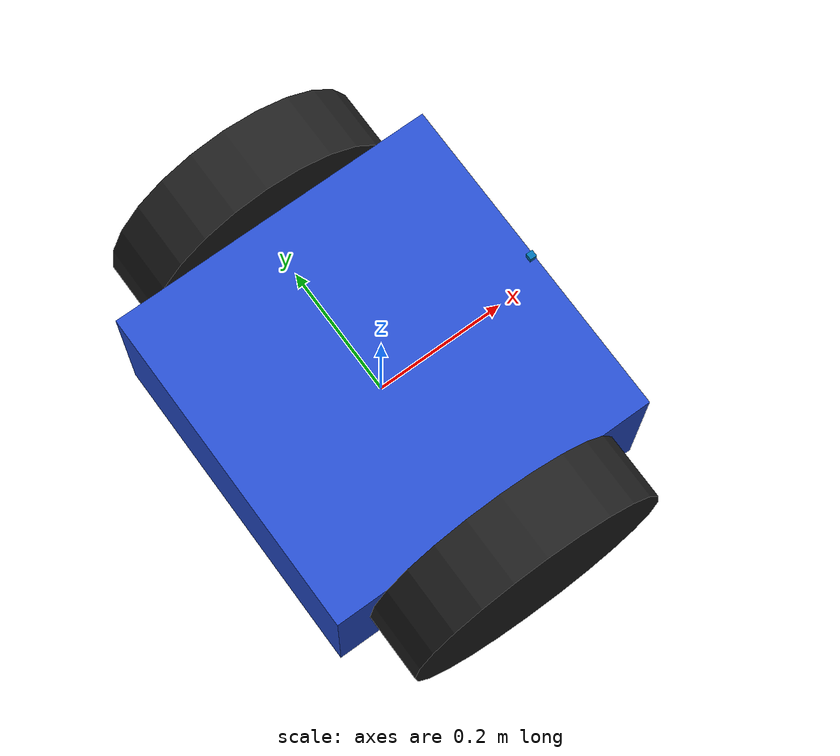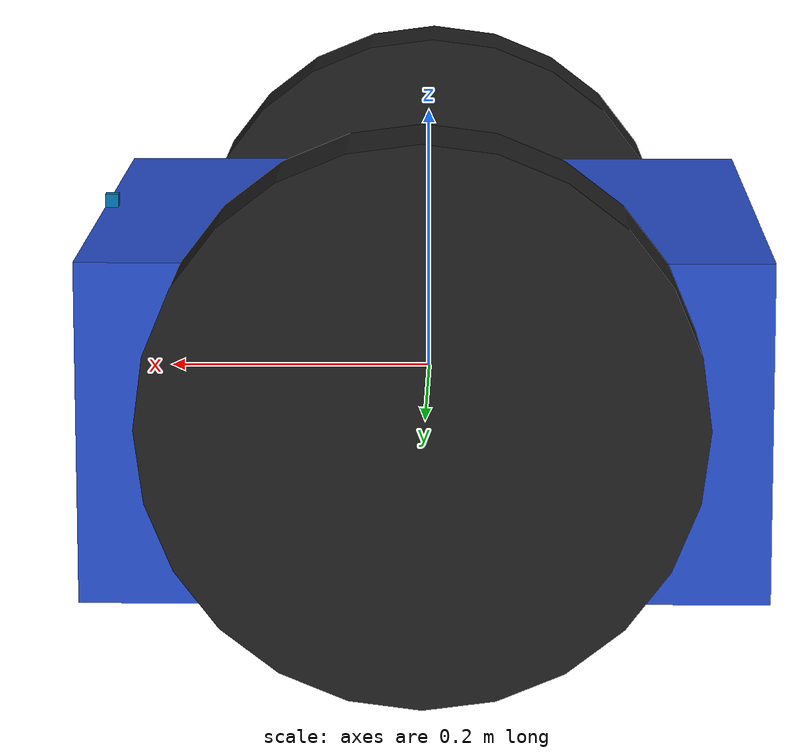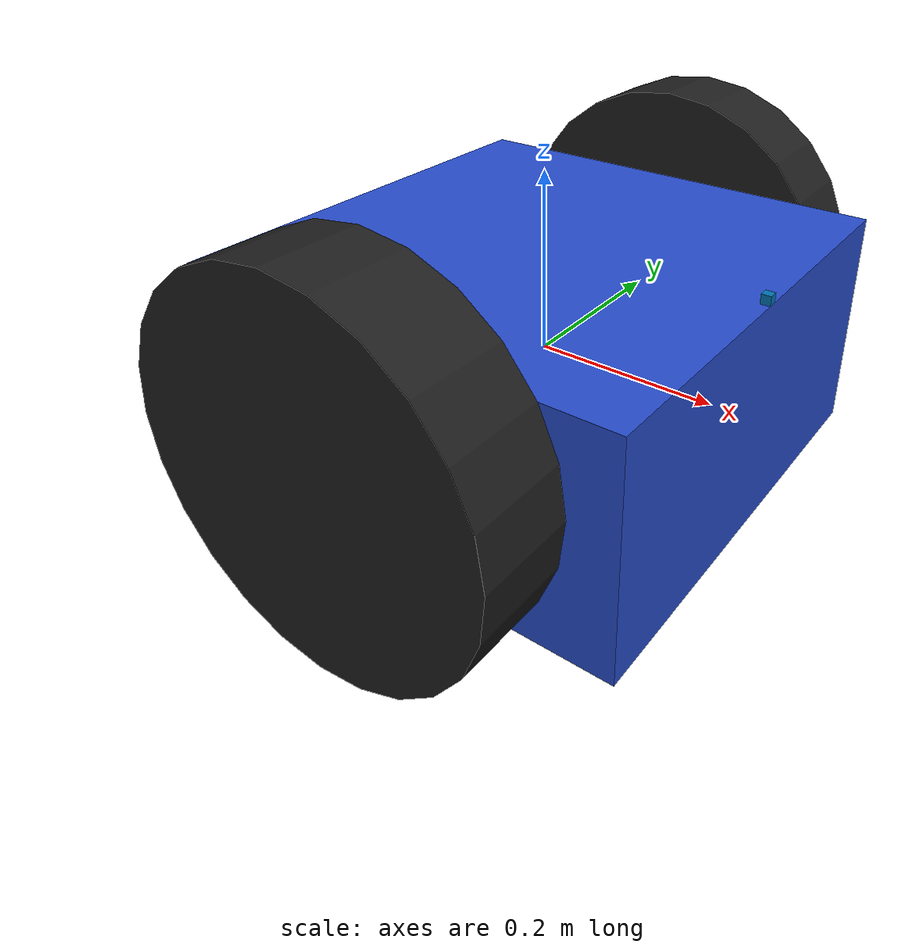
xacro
<?xml version='1.0'?>

<robot name="Rover" xmlns:xacro="http://www.ros.org/wiki/xacro">

  <xacro:include filename="$(find rover_description)/urdf/rover.gazebo" />
  <xacro:include filename="$(find rover_description)/urdf/materials.xacro"/>

  <link name='base_footprint'>
    <pose>0 0 0 0 0 0</pose>

    <inertial>
      <mass value="5"/>
      <inertia ixx="0.13" ixy="0.0" ixz="0.0" iyy="0.21" iyz="0.0" izz="0.13"/>
    </inertial>

    <collision name='collision'>
      <origin xyz="0 0 0" rpy="0 0 0" />
      <geometry>
          <box size="0.5 0.5 0.25"/>
      </geometry>
    </collision>

    <visual name='base_footprint_visual'>
      <origin xyz="0 0 0" rpy="0 0 0" />
      <geometry>
          <box size="0.5 0.5 0.25"/>
      </geometry>
    </visual>
  </link>

  <link name="left_wheel_front">
    <visual>
      <origin xyz="0 0 0" rpy="1.570795 0 0" />
      <geometry>
          <cylinder length="0.1" radius="0.2" />
      </geometry>
    </visual>
    <!-- Left Wheel collision, mass and inertia -->
    <collision>
      <origin xyz="0 0 0" rpy="1.570795 0 0" />
      <geometry>
          <cylinder length="0.1" radius="0.2" />
      </geometry>
    </collision>
    <inertial>
      <mass value="0.5"/>
      <inertia ixx="0.01" ixy="0.0" ixz="0.0" iyy="0.005" iyz="0.0" izz="0.005"/>
    </inertial>
  </link>

  <link name="right_wheel_front">
    <visual>
      <origin xyz="0 0 0" rpy="1.570795 0 0" />
      <geometry>
          <cylinder length="0.1" radius="0.2" />
      </geometry>
    </visual>
    <!-- Right Wheel collision, mass and inertia -->
    <collision>
      <origin xyz="0 0 0" rpy="1.570795 0 0" />
      <geometry>
          <cylinder length="0.1" radius="0.2" />
      </geometry>
    </collision>
    <inertial>
      <mass value="0.5"/>
      <inertia ixx="0.01" ixy="0.0" ixz="0.0" iyy="0.005" iyz="0.0" izz="0.005"/>
    </inertial>
  </link>

  <link name="caster_wheel">
    <collision name="collision">
      <origin xyz="0 0 0" rpy="1.570795 0 0"/>
      <geometry>
        <sphere radius="0.05"/>
      </geometry>
    </collision>

    <visual name="right_wheel_visual">
      <origin xyz="0 0 0" rpy="1.570795 0 0"/>
      <geometry>
        <sphere radius="0.05"/>
      </geometry>
    </visual>

    <inertial>
      <origin xyz="0 0 0" rpy="1.570795 0 0"/>
      <mass value="0.5"/>
      <inertia
        ixx=".1" ixy="0.0" ixz="0.0"
        iyy=".1" iyz="0.0"
        izz=".1"/>
    </inertial>
  </link>

  <joint type="continuous" name="left_wheel_front_hinge">
    <origin xyz="0 0.30 0.025" rpy="0 0 0" />
    <child link="left_wheel_front"/>
    <parent link="base_footprint"/>
    <axis xyz="0 1 0" rpy="0 0 0"/>
    <limit effort="10000" velocity="1000"/>
    <joint_properties damping="1.0" friction="1.0"/>
  </joint>

  <joint type="continuous" name="right_wheel_front_hinge">
    <origin xyz="0 -0.30 0.025" rpy="0 0 0" />
    <child link="right_wheel_front"/>
    <parent link="base_footprint"/>
    <axis xyz="0 1 0" rpy="0 0 0"/>
    <limit effort="10000" velocity="1000"/>
    <joint_properties damping="1.0" friction="1.0"/>
  </joint>

  <joint type="continuous" name="caster_wheel_hinge">
    <origin xyz="-0.2 0 -0.125" rpy="0 0 0" />
    <child link="caster_wheel"/>
    <parent link="base_footprint"/>
    <axis xyz="0 1 0" rpy="0 0 0"/>
    <limit effort="10000" velocity="1000"/>
    <joint_properties damping="1.0" friction="1.0"/>
  </joint>

  <!-- DISTANCE SENSOR -->
  <!-- Infrared sensor assembly -->
  <joint name="ir_front_joint" type="fixed">
    <axis xyz="0 1 0" />
    <origin rpy="0 0 0" xyz="0.245 0 0.13" />
    <parent link="base_footprint"/>
    <child link="base_ir_front"/>
  </joint>

  <link name="base_ir_front">
    <collision>
      <origin xyz="0 0 0" rpy="0 0 0"/>
      <geometry>
        <box size="0.01 0.01 0.01"/>
      </geometry>
    </collision>
    <visual>
      <origin xyz="0 0 0" rpy="0 0 0"/>
      <geometry>
        <box size="0.01 0.01 0.01"/>
      </geometry>
    </visual>
    <inertial>
      <mass value="1e-5" />
      <origin xyz="0 0 0" rpy="0 0 0"/>
      <inertia ixx="1e-6" ixy="0" ixz="0" iyy="1e-6" iyz="0"      izz="1e-6" />
    </inertial>
  </link>

</robot>
